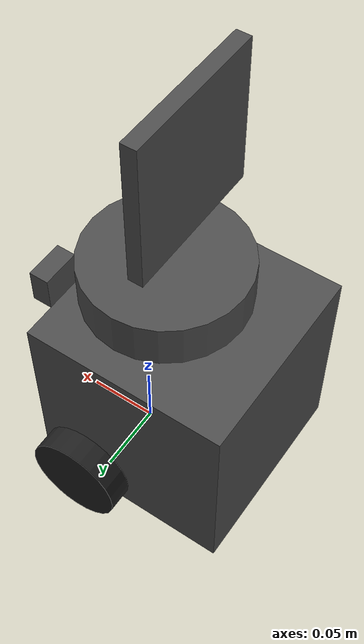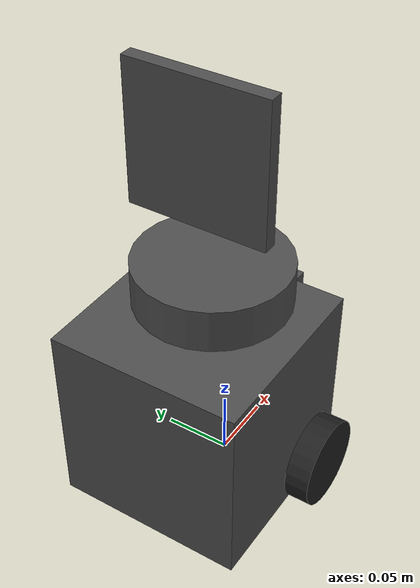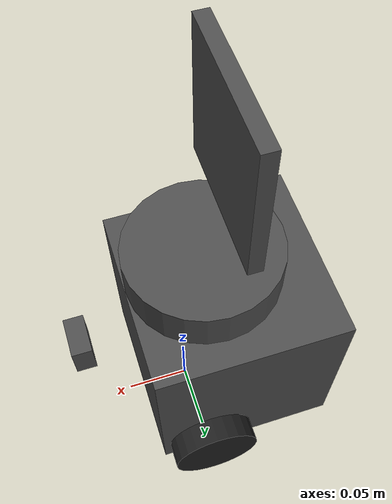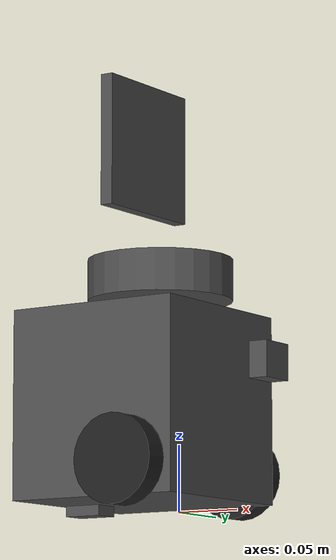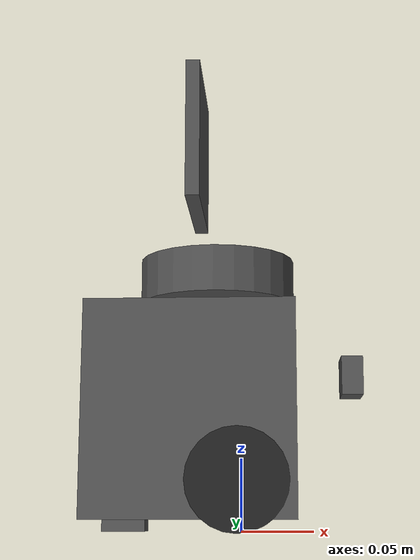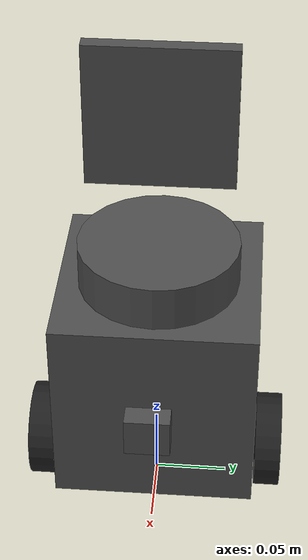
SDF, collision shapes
<sdf version='1.6'>
  <model name='turtlebot3_burger_aruco_0'>
    <link name='base_footprint'>
      <pose frame=''>0 0 0 0 -0 0</pose>
      <inertial>
        <pose frame=''>-0.00429 0 0.030734 0 -0 0</pose>
        <mass>0.944735</mass>
        <inertia>
          <ixx>0.00717896</ixx>
          <ixy>-1.22941e-05</ixy>
          <ixz>0.00057674</ixz>
          <iyy>0.00721804</iyy>
          <iyz>-5.01209e-06</iyz>
          <izz>0.00413858</izz>
        </inertia>
      </inertial>
      <collision name='base_footprint_fixed_joint_lump__base_link_collision'>
        <pose frame=''>-0.032 0 0.08 0 -0 0</pose>
        <geometry>
          <box>
            <size>0.14 0.14 0.143</size>
          </box>
        </geometry>
        <surface>
          <contact>
            <ode/>
          </contact>
          <friction>
            <ode/>
          </friction>
        </surface>
      </collision>
      <collision name='base_footprint_fixed_joint_lump__aruco_tag_link_collision_1'>
        <pose frame=''>-0.032 0 0.278 0 -0 0</pose>
        <geometry>
          <box>
            <size>0.01 0.1 0.1</size>
          </box>
        </geometry>
        <surface>
          <contact>
            <ode/>
          </contact>
          <friction>
            <ode/>
          </friction>
        </surface>
      </collision>
      <collision name='base_footprint_fixed_joint_lump__camera_link_collision_2'>
        <pose frame=''>0.078 0 0.107 0 -0 0</pose>
        <geometry>
          <box>
            <size>0.015 0.03 0.027</size>
          </box>
        </geometry>
      </collision>
      <collision name='base_footprint_fixed_joint_lump__caster_back_link_collision_3'>
        <pose frame=''>-0.081 1e-06 0.005 -1.57 0 0</pose>
        <geometry>
          <box>
            <size>0.03 0.009 0.02</size>
          </box>
        </geometry>
        <surface>
          <contact>
            <ode>
              <kp>1e+06</kp>
              <kd>100</kd>
              <max_vel>1</max_vel>
              <min_depth>0.001</min_depth>
            </ode>
          </contact>
          <friction>
            <ode>
              <mu>0.1</mu>
              <mu2>0.1</mu2>
            </ode>
          </friction>
        </surface>
      </collision>
      <collision name='base_footprint_fixed_joint_lump__base_scan_collision_4'>
        <pose frame=''>-0.017 0 0.1755 0 -0 0</pose>
        <geometry>
          <cylinder>
            <length>0.0315</length>
            <radius>0.055</radius>
          </cylinder>
        </geometry>
        <surface>
          <contact>
            <ode/>
          </contact>
          <friction>
            <ode/>
          </friction>
        </surface>
      </collision>
      <visual name='base_footprint_fixed_joint_lump__base_link_visual'>
        <pose frame=''>-0.032 0 0.01 0 -0 0</pose>
        <geometry>
          <mesh>
            <scale>0.001 0.001 0.001</scale>
            <uri>model://turtlebot3_description/meshes/bases/burger_base.stl</uri>
          </mesh>
        </geometry>
        <material>
          <script>
            <name>Gazebo/DarkGrey</name>
            <uri>file://media/materials/scripts/gazebo.material</uri>
          </script>
        </material>
      </visual>
      <visual name='base_footprint_fixed_joint_lump__aruco_tag_link_visual_1'>
        <pose frame=''>-0.032 0 0.278 0 -0 0</pose>
        <geometry>
          <mesh>
            <scale>0.001 0.001 0.001</scale>
            <uri>model://dse_turtlebot_descriptions/meshes/bases/burger_base.stl</uri>
          </mesh>
        </geometry>
        <material>
          <script>
            <uri>model://aruco_marker_0/materials/scripts</uri>
            <uri>model://aruco_marker_0/materials/textures</uri>
            <name>aruco_marker_0/Diffuse</name>
          </script>
        </material>
      </visual>
      <visual name='base_footprint_fixed_joint_lump__base_scan_visual_2'>
        <pose frame=''>-0.032 0 0.182 0 -0 0</pose>
        <geometry>
          <mesh>
            <scale>0.001 0.001 0.001</scale>
            <uri>model://turtlebot3_description/meshes/sensors/lds.stl</uri>
          </mesh>
        </geometry>
        <material>
          <script>
            <name>Gazebo/FlatBlack</name>
            <uri>file://media/materials/scripts/gazebo.material</uri>
          </script>
        </material>
      </visual>
      <velocity_decay/>
      <velocity_decay/>
      <velocity_decay/>
      <sensor name='Pi Camera' type='camera'>
        <always_on>1</always_on>
        <visualize>0</visualize>
        <camera name='__default__'>
          <horizontal_fov>1.0856</horizontal_fov>
          <image>
            <width>640</width>
            <height>480</height>
            <format>R8G8B8</format>
          </image>
          <clip>
            <near>0.03</near>
            <far>100</far>
          </clip>
        </camera>
        <plugin name='camera_controller' filename='libgazebo_ros_camera.so'>
          <alwaysOn>1</alwaysOn>
          <updateRate>30.0</updateRate>
          <cameraName>camera</cameraName>
          <frameName>camera_rgb_optical_frame</frameName>
          <imageTopicName>rgb/image_raw</imageTopicName>
          <cameraInfoTopicName>rgb/camera_info</cameraInfoTopicName>
          <hackBaseline>0.07</hackBaseline>
          <distortionK1>0.0</distortionK1>
          <distortionK2>0.0</distortionK2>
          <distortionK3>0.0</distortionK3>
          <distortionT1>0.0</distortionT1>
          <distortionT2>0.0</distortionT2>
        </plugin>
        <pose frame=''>0.076 0 0.103 0 -0 0</pose>
      </sensor>
      <velocity_decay/>
      <velocity_decay/>
      <sensor name='imu' type='imu'>
        <always_on>1</always_on>
        <visualize>0</visualize>
        <pose frame=''>-0.032 0 0.078 0 -0 0</pose>
      </sensor>
      <gravity>1</gravity>
      <velocity_decay/>
      <sensor name='lds_lfcd_sensor' type='ray'>
        <visualize>0</visualize>
        <update_rate>5</update_rate>
        <ray>
          <scan>
            <horizontal>
              <samples>360</samples>
              <resolution>1</resolution>
              <min_angle>0</min_angle>
              <max_angle>6.28319</max_angle>
            </horizontal>
          </scan>
          <range>
            <min>0.12</min>
            <max>3.5</max>
            <resolution>0.015</resolution>
          </range>
          <noise>
            <type>gaussian</type>
            <mean>0</mean>
            <stddev>0.01</stddev>
          </noise>
        </ray>
        <plugin name='gazebo_ros_lds_lfcd_controller' filename='libgazebo_ros_laser.so'>
          <topicName>scan</topicName>
          <frameName>base_scan</frameName>
        </plugin>
        <pose frame=''>-0.032 0 0.182 0 -0 0</pose>
      </sensor>
    </link>
    <link name='wheel_left_link'>
      <pose frame=''>0 0.08 0.033 -1.57 0 0</pose>
      <inertial>
        <pose frame=''>0 0 0 0 -0 0</pose>
        <mass>0.0284989</mass>
        <inertia>
          <ixx>1.11756e-05</ixx>
          <ixy>-4.23698e-11</ixy>
          <ixz>-5.93817e-09</ixz>
          <iyy>1.11924e-05</iyy>
          <iyz>-1.44001e-11</iyz>
          <izz>2.07126e-05</izz>
        </inertia>
      </inertial>
      <collision name='wheel_left_link_collision'>
        <pose frame=''>0 0 0 0 -0 0</pose>
        <geometry>
          <cylinder>
            <length>0.018</length>
            <radius>0.033</radius>
          </cylinder>
        </geometry>
        <surface>
          <contact>
            <ode>
              <kp>500000</kp>
              <kd>10</kd>
              <max_vel>0.1</max_vel>
              <min_depth>0.001</min_depth>
            </ode>
          </contact>
          <friction>
            <ode>
              <mu>0.1</mu>
              <mu2>0.1</mu2>
              <fdir1>1 0 0</fdir1>
            </ode>
          </friction>
        </surface>
      </collision>
      <visual name='wheel_left_link_visual'>
        <pose frame=''>0 0 0 1.57 -0 0</pose>
        <geometry>
          <mesh>
            <scale>0.001 0.001 0.001</scale>
            <uri>model://turtlebot3_description/meshes/wheels/left_tire.stl</uri>
          </mesh>
        </geometry>
        <material>
          <script>
            <name>Gazebo/FlatBlack</name>
            <uri>file://media/materials/scripts/gazebo.material</uri>
          </script>
        </material>
      </visual>
      <gravity>1</gravity>
      <velocity_decay/>
    </link>
    <joint name='wheel_left_joint' type='revolute'>
      <child>wheel_left_link</child>
      <parent>base_footprint</parent>
      <axis>
        <xyz>0 1 0.000796</xyz>
        <limit>
          <lower>-1e+16</lower>
          <upper>1e+16</upper>
        </limit>
        <dynamics>
          <spring_reference>0</spring_reference>
          <spring_stiffness>0</spring_stiffness>
        </dynamics>
        <use_parent_model_frame>1</use_parent_model_frame>
      </axis>
    </joint>
    <link name='wheel_right_link'>
      <pose frame=''>0 -0.08 0.033 -1.57 0 0</pose>
      <inertial>
        <pose frame=''>0 0 0 0 -0 0</pose>
        <mass>0.0284989</mass>
        <inertia>
          <ixx>1.11756e-05</ixx>
          <ixy>-4.23698e-11</ixy>
          <ixz>-5.93817e-09</ixz>
          <iyy>1.11924e-05</iyy>
          <iyz>-1.44001e-11</iyz>
          <izz>2.07126e-05</izz>
        </inertia>
      </inertial>
      <collision name='wheel_right_link_collision'>
        <pose frame=''>0 0 0 0 -0 0</pose>
        <geometry>
          <cylinder>
            <length>0.018</length>
            <radius>0.033</radius>
          </cylinder>
        </geometry>
        <surface>
          <contact>
            <ode>
              <kp>500000</kp>
              <kd>10</kd>
              <max_vel>0.1</max_vel>
              <min_depth>0.001</min_depth>
            </ode>
          </contact>
          <friction>
            <ode>
              <mu>0.1</mu>
              <mu2>0.1</mu2>
              <fdir1>1 0 0</fdir1>
            </ode>
          </friction>
        </surface>
      </collision>
      <visual name='wheel_right_link_visual'>
        <pose frame=''>0 0 0 1.57 -0 0</pose>
        <geometry>
          <mesh>
            <scale>0.001 0.001 0.001</scale>
            <uri>model://turtlebot3_description/meshes/wheels/right_tire.stl</uri>
          </mesh>
        </geometry>
        <material>
          <script>
            <name>Gazebo/FlatBlack</name>
            <uri>file://media/materials/scripts/gazebo.material</uri>
          </script>
        </material>
      </visual>
      <gravity>1</gravity>
      <velocity_decay/>
    </link>
    <joint name='wheel_right_joint' type='revolute'>
      <child>wheel_right_link</child>
      <parent>base_footprint</parent>
      <axis>
        <xyz>0 1 0.000796</xyz>
        <limit>
          <lower>-1e+16</lower>
          <upper>1e+16</upper>
        </limit>
        <dynamics>
          <spring_reference>0</spring_reference>
          <spring_stiffness>0</spring_stiffness>
        </dynamics>
        <use_parent_model_frame>1</use_parent_model_frame>
      </axis>
    </joint>
    <plugin name='turtlebot3_burger_controller' filename='libgazebo_ros_diff_drive.so'>
      <commandTopic>cmd_vel</commandTopic>
      <odometryTopic>odom</odometryTopic>
      <odometryFrame>odom</odometryFrame>
      <odometrySource>world</odometrySource>
      <publishOdomTF>1</publishOdomTF>
      <robotBaseFrame>base_footprint</robotBaseFrame>
      <publishWheelTF>0</publishWheelTF>
      <publishTf>1</publishTf>
      <publishWheelJointState>1</publishWheelJointState>
      <legacyMode>0</legacyMode>
      <updateRate>30</updateRate>
      <leftJoint>wheel_left_joint</leftJoint>
      <rightJoint>wheel_right_joint</rightJoint>
      <wheelSeparation>0.160</wheelSeparation>
      <wheelDiameter>0.066</wheelDiameter>
      <wheelAcceleration>1</wheelAcceleration>
      <wheelTorque>10</wheelTorque>
      <rosDebugLevel>na</rosDebugLevel>
    </plugin>
    <static>0</static>
    <plugin name='imu_plugin' filename='libgazebo_ros_imu.so'>
      <alwaysOn>1</alwaysOn>
      <topicName>imu</topicName>
      <serviceName>imu_service</serviceName>
      <gaussianNoise>0.0</gaussianNoise>
      <updateRate>200</updateRate>
      <imu>
        <noise>
          <type>gaussian</type>
          <rate>
            <mean>0.0</mean>
            <stddev>2e-4</stddev>
            <bias_mean>0.0000075</bias_mean>
            <bias_stddev>0.0000008</bias_stddev>
          </rate>
          <accel>
            <mean>0.0</mean>
            <stddev>1.7e-2</stddev>
            <bias_mean>0.1</bias_mean>
            <bias_stddev>0.001</bias_stddev>
          </accel>
        </noise>
      </imu>
      <bodyName>base_footprint</bodyName>
      <frameName>base_footprint</frameName>
      <xyzOffset>0.064 0 -0.156</xyzOffset>
      <rpyOffset>0 -0 0</rpyOffset>
    </plugin>
  </model>
</sdf>
